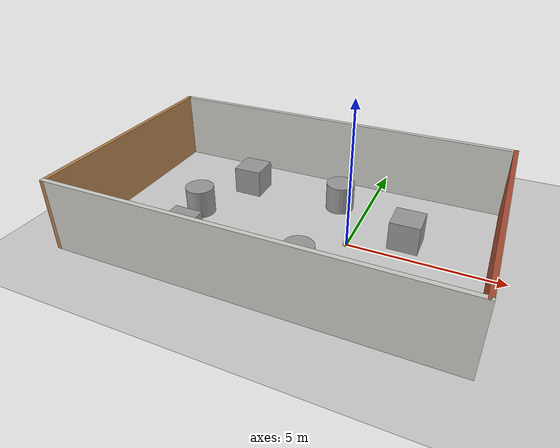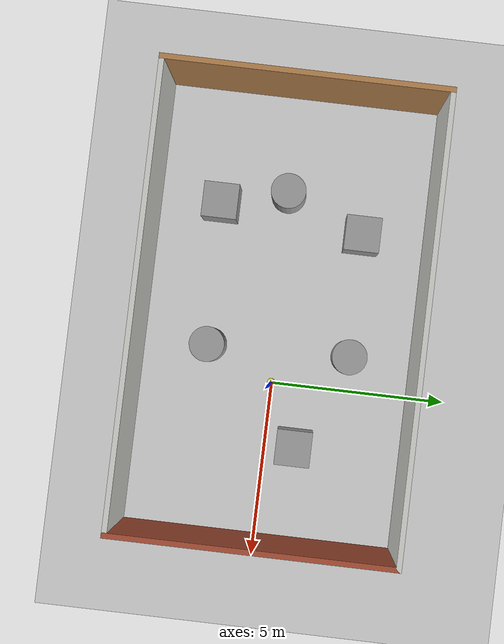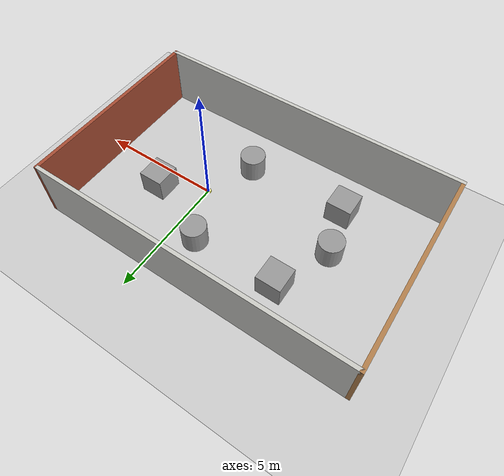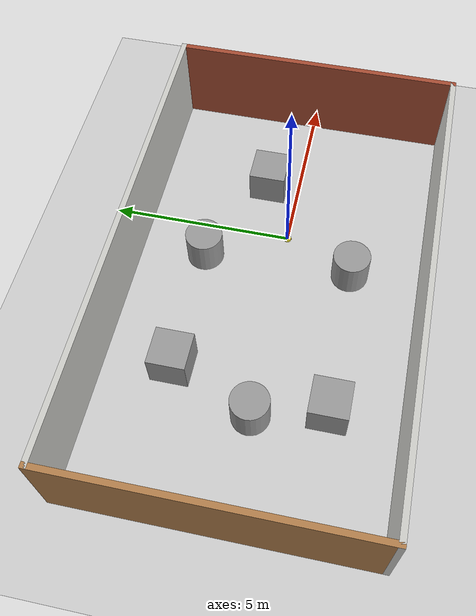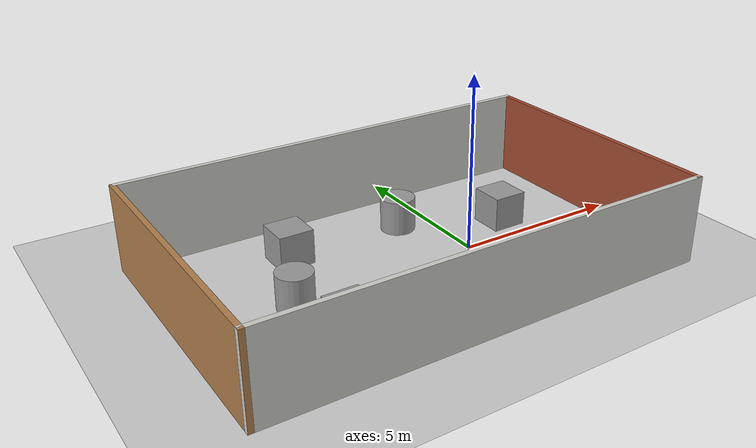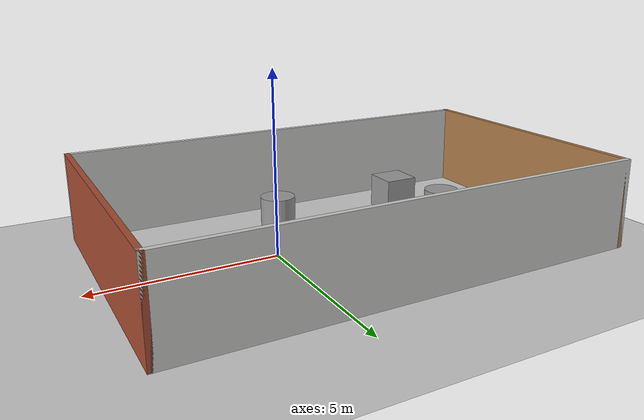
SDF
<sdf version="1.6">
 <world name="default">
  <light name="sun" type="directional">
   <pose>0 0 10 0 -0 0</pose>
   <diffuse>0.8 0.8 0.8 1</diffuse>
   <specular>0.2 0.2 0.2 1</specular>
   <attenuation>
    <range>1000</range>
    <constant>0.9</constant>
    <linear>0.01</linear>
    <quadratic>0.001</quadratic>
   </attenuation>
   <direction>-0.5 0.1 -0.9</direction>
   <spot><inner_angle>0</inner_angle><outer_angle>0</outer_angle><falloff>0</falloff></spot>
  </light>
  <model name="ground_plane">
   <static>1</static>
   <link name="link">
    <collision name="collision">
     <geometry><plane><normal>0 0 1</normal><size>100 100</size></plane></geometry>
     <surface>
      <contact><collide_bitmask>65535</collide_bitmask></contact>
      <friction><ode><mu>100</mu><mu2>50</mu2></ode></friction>
     </surface>
    </collision>
    <visual name="visual">
     <cast_shadows>0</cast_shadows>
     <geometry><plane><normal>0 0 1</normal><size>100 100</size></plane></geometry>
     <material>
      <script><uri>file://media/materials/scripts/gazebo.material</uri><name>Gazebo/Grey</name></script>
     </material>
    </visual>
   </link>
  </model>
  <gravity>0 0 -9.8</gravity>
  <magnetic_field>6e-06 2.3e-05 -4.2e-05</magnetic_field>
  <atmosphere type="adiabatic"/>
  <physics name="default_physics" default="0" type="ode">
   <max_step_size>0.001</max_step_size>
   <real_time_factor>1</real_time_factor>
   <real_time_update_rate>1000</real_time_update_rate>
  </physics>
  <scene><ambient>0.4 0.4 0.4 1</ambient><background>0.7 0.7 0.7 1</background><shadows>1</shadows></scene>
  <spherical_coordinates>
   <surface_model>EARTH_WGS84</surface_model>
   <latitude_deg>0</latitude_deg>
   <longitude_deg>0</longitude_deg>
   <elevation>0</elevation>
   <heading_deg>0</heading_deg>
  </spherical_coordinates>
  <model name="box_house">
   <pose>-1.97643 0.05996 0 0 -0 0</pose>
   <link name="Wall_1">
    <collision name="Wall_1_Collision">
     <geometry><box><size>13 0.15 2.5</size></box></geometry>
     <pose>0 0 1.25 0 -0 0</pose>
    </collision>
    <visual name="Wall_1_Visual">
     <pose>0 0 1.25 0 -0 0</pose>
     <geometry><box><size>13 0.15 2.5</size></box></geometry>
     <material>
      <script><uri>file://media/materials/scripts/gazebo.material</uri><name>Gazebo/CeilingTiled</name></script>
      <ambient>1 1 1 1</ambient>
     </material>
     <meta><layer>0</layer></meta>
    </visual>
    <pose>0 3.925 0 0 -0 0</pose>
   </link>
   <link name="Wall_2">
    <collision name="Wall_2_Collision">
     <geometry><box><size>8 0.15 2.5</size></box></geometry>
     <pose>0 0 1.25 0 -0 0</pose>
    </collision>
    <visual name="Wall_2_Visual">
     <pose>0 0 1.25 0 -0 0</pose>
     <geometry><box><size>8 0.15 2.5</size></box></geometry>
     <material>
      <script><uri>file://media/materials/scripts/gazebo.material</uri><name>Gazebo/Bricks</name></script>
      <ambient>1 1 1 1</ambient>
     </material>
     <meta><layer>0</layer></meta>
    </visual>
    <pose>6.425 -0 0 0 -0 -1.5708</pose>
   </link>
   <link name="Wall_3">
    <collision name="Wall_3_Collision">
     <geometry><box><size>13 0.15 2.5</size></box></geometry>
     <pose>0 0 1.25 0 -0 0</pose>
    </collision>
    <visual name="Wall_3_Visual">
     <pose>0 0 1.25 0 -0 0</pose>
     <geometry><box><size>13 0.15 2.5</size></box></geometry>
     <material>
      <script><uri>file://media/materials/scripts/gazebo.material</uri><name>Gazebo/CeilingTiled</name></script>
      <ambient>1 1 1 1</ambient>
     </material>
     <meta><layer>0</layer></meta>
    </visual>
    <pose>0 -3.925 0 0 -0 3.14159</pose>
   </link>
   <link name="Wall_4">
    <collision name="Wall_4_Collision">
     <geometry><box><size>8 0.15 2.5</size></box></geometry>
     <pose>0 0 1.25 0 -0 0</pose>
    </collision>
    <visual name="Wall_4_Visual">
     <pose>0 0 1.25 0 -0 0</pose>
     <geometry><box><size>8 0.15 2.5</size></box></geometry>
     <material>
      <script><uri>file://media/materials/scripts/gazebo.material</uri><name>Gazebo/Wood</name></script>
      <ambient>1 1 1 1</ambient>
     </material>
     <meta><layer>0</layer></meta>
    </visual>
    <pose>-6.425 -0 0 0 -0 1.5708</pose>
   </link>
   <static>1</static>
  </model>
  <model name="unit_box">
   <pose>-4.48566 2.10086 0.499995 1e-05 -0 0</pose>
   <link name="link">
    <inertial>
     <mass>1</mass>
     <inertia>
      <ixx>0.166667</ixx>
      <ixy>0</ixy>
      <ixz>0</ixz>
      <iyy>0.166667</iyy>
      <iyz>0</iyz>
      <izz>0.166667</izz>
     </inertia>
    </inertial>
    <collision name="collision"><geometry><box><size>1 1 1</size></box></geometry></collision>
    <visual name="visual">
     <geometry><box><size>1 1 1</size></box></geometry>
     <material>
      <script><name>Gazebo/Grey</name><uri>file://media/materials/scripts/gazebo.material</uri></script>
     </material>
    </visual>
   </link>
  </model>
  <model name="unit_cylinder">
   <pose>-5.44442 -0.121229 0.499995 3e-06 -3e-06 0</pose>
   <link name="link">
    <inertial>
     <mass>1</mass>
     <inertia><ixx>0.145833</ixx><ixy>0</ixy><ixz>0</ixz><iyy>0.145833</iyy><iyz>0</iyz><izz>0.125</izz></inertia>
    </inertial>
    <collision name="collision">
     <geometry><cylinder><radius>0.5</radius><length>1</length></cylinder></geometry>
    </collision>
    <visual name="visual">
     <geometry><cylinder><radius>0.5</radius><length>1</length></cylinder></geometry>
     <material>
      <script><name>Gazebo/Grey</name><uri>file://media/materials/scripts/gazebo.material</uri></script>
     </material>
    </visual>
   </link>
  </model>
  <model name="unit_box_0">
   <pose>-4.96406 -2.00353 0.499995 0 1e-05 0</pose>
   <link name="link">
    <inertial>
     <mass>1</mass>
     <inertia>
      <ixx>0.166667</ixx>
      <ixy>0</ixy>
      <ixz>0</ixz>
      <iyy>0.166667</iyy>
      <iyz>0</iyz>
      <izz>0.166667</izz>
     </inertia>
    </inertial>
    <collision name="collision"><geometry><box><size>1 1 1</size></box></geometry></collision>
    <visual name="visual">
     <geometry><box><size>1 1 1</size></box></geometry>
     <material>
      <script><name>Gazebo/Grey</name><uri>file://media/materials/scripts/gazebo.material</uri></script>
     </material>
    </visual>
   </link>
  </model>
  <model name="unit_box_1">
   <pose>1.73718 0.850844 0.499995 -1e-05 0 0</pose>
   <link name="link">
    <inertial>
     <mass>1</mass>
     <inertia>
      <ixx>0.166667</ixx>
      <ixy>0</ixy>
      <ixz>0</ixz>
      <iyy>0.166667</iyy>
      <iyz>0</iyz>
      <izz>0.166667</izz>
     </inertia>
    </inertial>
    <collision name="collision"><geometry><box><size>1 1 1</size></box></geometry></collision>
    <visual name="visual">
     <geometry><box><size>1 1 1</size></box></geometry>
     <material>
      <script><name>Gazebo/Grey</name><uri>file://media/materials/scripts/gazebo.material</uri></script>
     </material>
    </visual>
   </link>
  </model>
  <model name="unit_cylinder_0">
   <pose>-0.988146 2.12658 0.499998 3e-06 -4e-06 0</pose>
   <link name="link">
    <inertial>
     <mass>1</mass>
     <inertia><ixx>0.145833</ixx><ixy>0</ixy><ixz>0</ixz><iyy>0.145833</iyy><iyz>0</iyz><izz>0.125</izz></inertia>
    </inertial>
    <collision name="collision">
     <geometry><cylinder><radius>0.5</radius><length>1</length></cylinder></geometry>
    </collision>
    <visual name="visual">
     <geometry><cylinder><radius>0.5</radius><length>1</length></cylinder></geometry>
     <material>
      <script><name>Gazebo/Grey</name><uri>file://media/materials/scripts/gazebo.material</uri></script>
     </material>
    </visual>
   </link>
  </model>
  <model name="unit_cylinder_1">
   <pose>-0.89058 -1.90634 0.499992 -3e-06 -4e-06 -0</pose>
   <link name="link">
    <inertial>
     <mass>1</mass>
     <inertia><ixx>0.145833</ixx><ixy>0</ixy><ixz>0</ixz><iyy>0.145833</iyy><iyz>0</iyz><izz>0.125</izz></inertia>
    </inertial>
    <collision name="collision">
     <geometry><cylinder><radius>0.5</radius><length>1</length></cylinder></geometry>
    </collision>
    <visual name="visual">
     <geometry><cylinder><radius>0.5</radius><length>1</length></cylinder></geometry>
     <material>
      <script><name>Gazebo/Grey</name><uri>file://media/materials/scripts/gazebo.material</uri></script>
     </material>
    </visual>
   </link>
  </model>
  <model name="car">
   <link name="base_footprint">
    <inertial>
     <pose>0.000379 0 0.065498 0 -0 0</pose>
     <mass>2.11</mass>
     <inertia>
      <ixx>0.0105446</ixx>
      <ixy>0</ixy>
      <ixz>-4.36019e-05</ixz>
      <iyy>0.0106083</iyy>
      <iyz>0</iyz>
      <izz>0.0101129</izz>
     </inertia>
    </inertial>
    <collision name="base_footprint_fixed_joint_lump__base_link_collision">
     <pose>0 0 0.055 0 -0 0</pose>
     <geometry><cylinder><length>0.08</length><radius>0.1</radius></cylinder></geometry>
    </collision>
    <collision name="base_footprint_fixed_joint_lump__camera_collision_1">
     <pose>0.08 0 0.12 0 -0 0</pose>
     <geometry><box><size>0.02 0.05 0.05</size></box></geometry>
    </collision>
    <collision name="base_footprint_fixed_joint_lump__laser_collision_2">
     <pose>0 0 0.27 0 -0 0</pose>
     <geometry><cylinder><length>0.05</length><radius>0.03</radius></cylinder></geometry>
    </collision>
    <visual name="base_footprint_visual"><geometry><sphere><radius>0.001</radius></sphere></geometry></visual>
    <visual name="base_footprint_fixed_joint_lump__base_link_visual_1">
     <pose>0 0 0.055 0 -0 0</pose>
     <geometry><cylinder><length>0.08</length><radius>0.1</radius></cylinder></geometry>
     <material>
      <script><name>Gazebo/Yellow</name><uri>file://media/materials/scripts/gazebo.material</uri></script>
     </material>
    </visual>
    <visual name="base_footprint_fixed_joint_lump__camera_visual_2">
     <pose>0.08 0 0.12 0 -0 0</pose>
     <geometry><box><size>0.02 0.05 0.05</size></box></geometry>
     <material>
      <script><name>Gazebo/Blue</name><uri>file://media/materials/scripts/gazebo.material</uri></script>
     </material>
    </visual>
    <visual name="base_footprint_fixed_joint_lump__support_visual_3">
     <pose>0 0 0.17 0 -0 0</pose>
     <geometry><cylinder><length>0.15</length><radius>0.01</radius></cylinder></geometry>
     <material>
      <script><name>Gazebo/Gray</name><uri>file://media/materials/scripts/gazebo.material</uri></script>
     </material>
    </visual>
    <visual name="base_footprint_fixed_joint_lump__laser_visual_4">
     <pose>0 0 0.27 0 -0 0</pose>
     <geometry><cylinder><length>0.05</length><radius>0.03</radius></cylinder></geometry>
     <material>
      <script><name>Gazebo/Black</name><uri>file://media/materials/scripts/gazebo.material</uri></script>
     </material>
    </visual>
    <sensor name="camera_node" type="camera">
     <update_rate>30</update_rate>
     <camera name="head">
      <horizontal_fov>1.39626</horizontal_fov>
      <image><width>1280</width><height>720</height><format>R8G8B8</format></image>
      <clip><near>0.02</near><far>300</far></clip>
      <noise><type>gaussian</type><mean>0</mean><stddev>0.007</stddev></noise>
     </camera>
     <plugin name="gazebo_camera" filename="libgazebo_ros_camera.so">
      <alwaysOn>1</alwaysOn>
      <updateRate>0.0</updateRate>
      <cameraName>/camera</cameraName>
      <imageTopicName>image_raw</imageTopicName>
      <cameraInfoTopicName>camera_info</cameraInfoTopicName>
      <frameName>camera</frameName>
      <hackBaseline>0.07</hackBaseline>
      <distortionK1>0.0</distortionK1>
      <distortionK2>0.0</distortionK2>
      <distortionK3>0.0</distortionK3>
      <distortionT1>0.0</distortionT1>
      <distortionT2>0.0</distortionT2>
      <robotNamespace>/</robotNamespace>
     </plugin>
     <pose>0.08 0 0.12 0 -0 0</pose>
    </sensor>
    <sensor name="camera" type="depth">
     <always_on>1</always_on>
     <update_rate>20</update_rate>
     <camera name="__default__">
      <horizontal_fov>1.0472</horizontal_fov>
      <image><format>R8G8B8</format><width>640</width><height>480</height></image>
      <clip><near>0.05</near><far>8</far></clip>
     </camera>
     <plugin name="kinect_camera_controller" filename="libgazebo_ros_openni_kinect.so">
      <cameraName>camera</cameraName>
      <alwaysOn>1</alwaysOn>
      <updateRate>10</updateRate>
      <imageTopicName>rgb/image_raw</imageTopicName>
      <depthImageTopicName>depth/image_raw</depthImageTopicName>
      <pointCloudTopicName>depth/points</pointCloudTopicName>
      <cameraInfoTopicName>rgb/camera_info</cameraInfoTopicName>
      <depthImageCameraInfoTopicName>depth/camera_info</depthImageCameraInfoTopicName>
      <frameName>support_depth</frameName>
      <baseline>0.1</baseline>
      <distortion_k1>0.0</distortion_k1>
      <distortion_k2>0.0</distortion_k2>
      <distortion_k3>0.0</distortion_k3>
      <distortion_t1>0.0</distortion_t1>
      <distortion_t2>0.0</distortion_t2>
      <pointCloudCutoff>0.4</pointCloudCutoff>
      <robotNamespace>/</robotNamespace>
     </plugin>
     <pose>0 0 0.17 0 -0 0</pose>
    </sensor>
    <sensor name="rplidar" type="ray">
     <visualize>1</visualize>
     <update_rate>5.5</update_rate>
     <ray>
      <scan>
       <horizontal>
        <samples>360</samples>
        <resolution>1</resolution>
        <min_angle>-3</min_angle>
        <max_angle>3</max_angle>
       </horizontal>
       <vertical><samples>1</samples><min_angle>0</min_angle><max_angle>0</max_angle></vertical>
      </scan>
      <range><min>0.1</min><max>30</max><resolution>0.01</resolution></range>
      <noise><type>gaussian</type><mean>0</mean><stddev>0.01</stddev></noise>
     </ray>
     <plugin name="gazebo_rplidar" filename="libgazebo_ros_laser.so">
      <topicName>/scan</topicName>
      <frameName>laser</frameName>
      <robotNamespace>/</robotNamespace>
     </plugin>
     <pose>0 0 0.27 0 -0 0</pose>
    </sensor>
   </link>
   <link name="back_wheel">
    <pose>-0.08 0 0.0075 0 -0 0</pose>
    <inertial>
     <mass>0.01</mass>
     <inertia>
      <ixx>2.25e-07</ixx>
      <ixy>0</ixy>
      <ixz>0</ixz>
      <iyy>2.25e-07</iyy>
      <iyz>0</iyz>
      <izz>2.25e-07</izz>
     </inertia>
    </inertial>
    <collision name="back_wheel_collision">
     <geometry><sphere><radius>0.0075</radius></sphere></geometry>
    </collision>
    <visual name="back_wheel_visual">
     <geometry><sphere><radius>0.0075</radius></sphere></geometry>
     <material>
      <script><name>Gazebo/Red</name><uri>file://media/materials/scripts/gazebo.material</uri></script>
     </material>
    </visual>
   </link>
   <joint name="back2link" type="revolute">
    <child>back_wheel</child>
    <parent>base_footprint</parent>
    <axis>
     <xyz>0 1 0</xyz>
     <limit><lower>-1e+16</lower><upper>1e+16</upper></limit>
     <dynamics><spring_reference>0</spring_reference><spring_stiffness>0</spring_stiffness></dynamics>
     <use_parent_model_frame>0</use_parent_model_frame>
    </axis>
   </joint>
   <link name="front_wheel">
    <pose>0.08 0 0.0075 0 -0 0</pose>
    <inertial>
     <mass>0.01</mass>
     <inertia>
      <ixx>2.25e-07</ixx>
      <ixy>0</ixy>
      <ixz>0</ixz>
      <iyy>2.25e-07</iyy>
      <iyz>0</iyz>
      <izz>2.25e-07</izz>
     </inertia>
    </inertial>
    <collision name="front_wheel_collision">
     <geometry><sphere><radius>0.0075</radius></sphere></geometry>
    </collision>
    <visual name="front_wheel_visual">
     <geometry><sphere><radius>0.0075</radius></sphere></geometry>
     <material>
      <script><name>Gazebo/Red</name><uri>file://media/materials/scripts/gazebo.material</uri></script>
     </material>
    </visual>
   </link>
   <joint name="front2link" type="revolute">
    <child>front_wheel</child>
    <parent>base_footprint</parent>
    <axis>
     <xyz>0 1 0</xyz>
     <limit><lower>-1e+16</lower><upper>1e+16</upper></limit>
     <dynamics><spring_reference>0</spring_reference><spring_stiffness>0</spring_stiffness></dynamics>
     <use_parent_model_frame>0</use_parent_model_frame>
    </axis>
   </joint>
   <link name="left_wheel">
    <pose>0 0.1 0.0325 0 -0 0</pose>
    <inertial>
     <mass>0.05</mass>
     <inertia>
      <ixx>1.41406e-05</ixx>
      <ixy>0</ixy>
      <ixz>0</ixz>
      <iyy>1.41406e-05</iyy>
      <iyz>0</iyz>
      <izz>2.64063e-05</izz>
     </inertia>
    </inertial>
    <collision name="left_wheel_collision">
     <pose>0 0 0 1.5708 -0 0</pose>
     <geometry><cylinder><length>0.015</length><radius>0.0325</radius></cylinder></geometry>
    </collision>
    <visual name="left_wheel_visual">
     <pose>0 0 0 1.5708 -0 0</pose>
     <geometry><cylinder><length>0.015</length><radius>0.0325</radius></cylinder></geometry>
     <material>
      <script><name>Gazebo/Red</name><uri>file://media/materials/scripts/gazebo.material</uri></script>
     </material>
    </visual>
   </link>
   <joint name="left2link" type="revolute">
    <child>left_wheel</child>
    <parent>base_footprint</parent>
    <axis>
     <xyz>0 1 0</xyz>
     <limit><lower>-1e+16</lower><upper>1e+16</upper></limit>
     <dynamics><spring_reference>0</spring_reference><spring_stiffness>0</spring_stiffness></dynamics>
     <use_parent_model_frame>0</use_parent_model_frame>
    </axis>
   </joint>
   <link name="right_wheel">
    <pose>0 -0.1 0.0325 0 -0 0</pose>
    <inertial>
     <mass>0.05</mass>
     <inertia>
      <ixx>1.41406e-05</ixx>
      <ixy>0</ixy>
      <ixz>0</ixz>
      <iyy>1.41406e-05</iyy>
      <iyz>0</iyz>
      <izz>2.64063e-05</izz>
     </inertia>
    </inertial>
    <collision name="right_wheel_collision">
     <pose>0 0 0 1.5708 -0 0</pose>
     <geometry><cylinder><length>0.015</length><radius>0.0325</radius></cylinder></geometry>
    </collision>
    <visual name="right_wheel_visual">
     <pose>0 0 0 1.5708 -0 0</pose>
     <geometry><cylinder><length>0.015</length><radius>0.0325</radius></cylinder></geometry>
     <material>
      <script><name>Gazebo/Red</name><uri>file://media/materials/scripts/gazebo.material</uri></script>
     </material>
    </visual>
   </link>
   <joint name="right2link" type="revolute">
    <child>right_wheel</child>
    <parent>base_footprint</parent>
    <axis>
     <xyz>0 1 0</xyz>
     <limit><lower>-1e+16</lower><upper>1e+16</upper></limit>
     <dynamics><spring_reference>0</spring_reference><spring_stiffness>0</spring_stiffness></dynamics>
     <use_parent_model_frame>0</use_parent_model_frame>
    </axis>
   </joint>
   <static>0</static>
   <plugin name="differential_drive_controller" filename="libgazebo_ros_diff_drive.so">
    <rosDebugLevel>Debug</rosDebugLevel>
    <publishWheelTF>1</publishWheelTF>
    <robotNamespace>/</robotNamespace>
    <publishTf>1</publishTf>
    <publishWheelJointState>1</publishWheelJointState>
    <alwaysOn>1</alwaysOn>
    <updateRate>100.0</updateRate>
    <legacyMode>1</legacyMode>
    <leftJoint>left2link</leftJoint>
    <rightJoint>right2link</rightJoint>
    <wheelSeparation>0.2</wheelSeparation>
    <wheelDiameter>0.065</wheelDiameter>
    <broadcastTF>1</broadcastTF>
    <wheelTorque>30</wheelTorque>
    <wheelAcceleration>1.8</wheelAcceleration>
    <commandTopic>cmd_vel</commandTopic>
    <odometryFrame>odom</odometryFrame>
    <odometryTopic>odom</odometryTopic>
    <robotBaseFrame>base_footprint</robotBaseFrame>
   </plugin>
   <pose>-0.02395 -0.012516 -0 -5e-06 9e-06 0.420367</pose>
  </model>
 </world>
</sdf>
